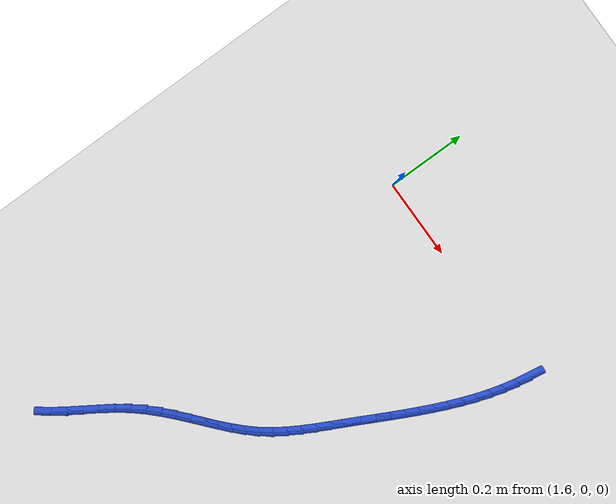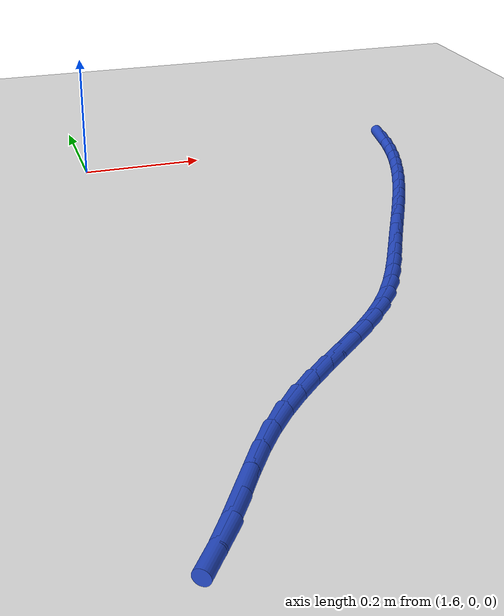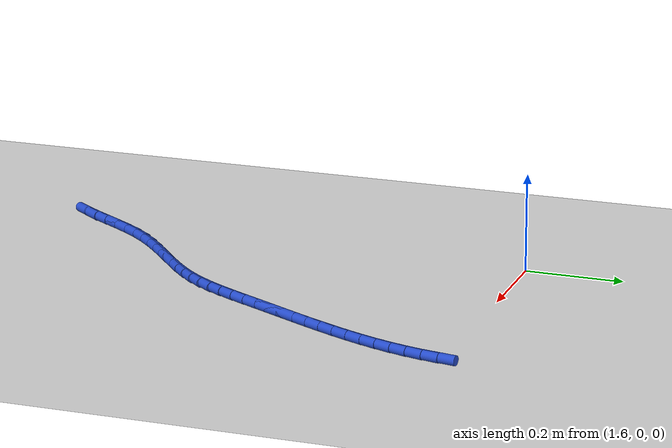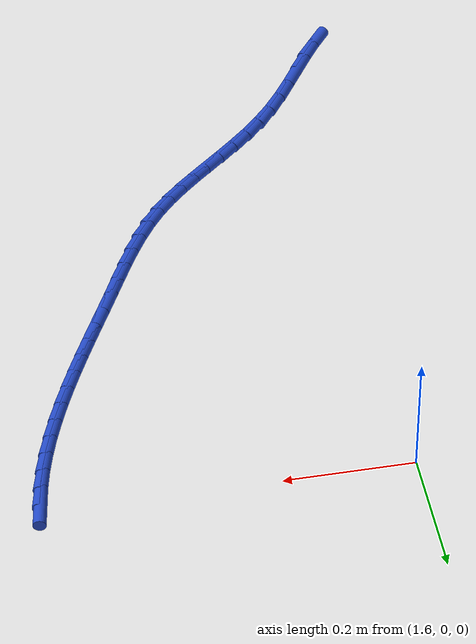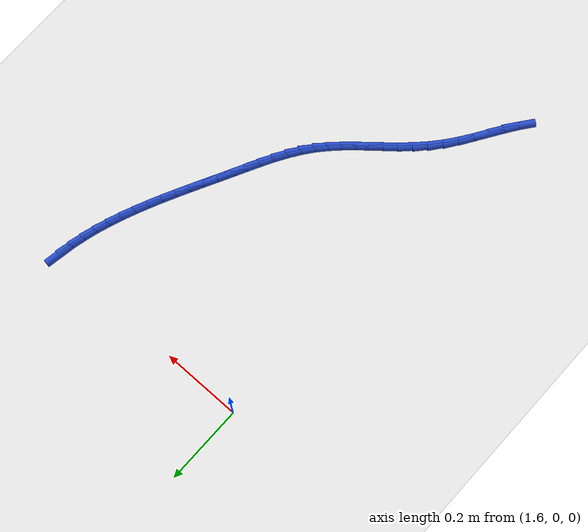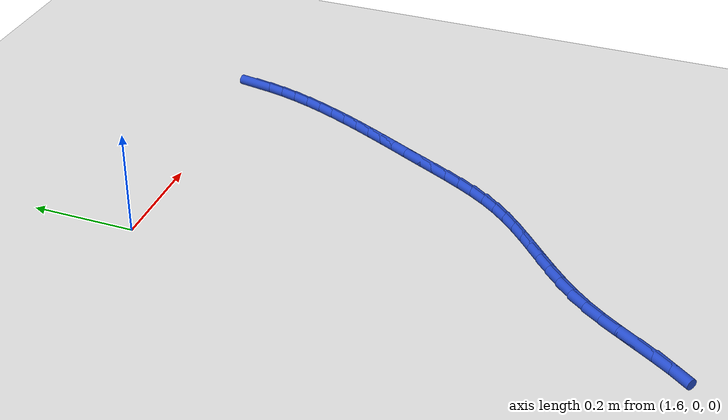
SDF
<sdf version="1.6">
 <world name="default">
  <model name="ground_plane">
   <static>1</static>
   <link name="link">
    <collision name="collision">
     <geometry><plane><normal>0 0 1</normal><size>100 100</size></plane></geometry>
     <surface><friction><ode><mu>100</mu><mu2>50</mu2></ode></friction></surface>
    </collision>
    <visual name="visual">
     <cast_shadows>0</cast_shadows>
     <geometry><plane><normal>0 0 1</normal><size>100 100</size></plane></geometry>
     <material>
      <script><uri>file://media/materials/scripts/gazebo.material</uri><name>Gazebo/WhiteGlow</name></script>
     </material>
    </visual>
   </link>
  </model>
  <model name="line">
   <link name="link_102">
    <pose>2.155064588680675 -0.008792439000582252 0.01 0 1.57 1.4000253454323495</pose>
    <collision name="collision">
     <geometry><cylinder><radius>0.01</radius><length>0.08</length></cylinder></geometry>
    </collision>
    <visual name="visual">
     <material>
      <script><name>Gazebo/Blue</name><uri>file://media/materials/scripts/gazebo.material</uri></script>
     </material>
     <geometry><cylinder><radius>0.01</radius><length>0.08</length></cylinder></geometry>
    </visual>
   </link>
   <link name="link_103">
    <pose>2.149396776092946 -0.04165873065581562 0.01 0 1.57 1.3446175372829663</pose>
    <collision name="collision">
     <geometry><cylinder><radius>0.01</radius><length>0.08</length></cylinder></geometry>
    </collision>
    <visual name="visual">
     <material>
      <script><name>Gazebo/Blue</name><uri>file://media/materials/scripts/gazebo.material</uri></script>
     </material>
     <geometry><cylinder><radius>0.01</radius><length>0.08</length></cylinder></geometry>
    </visual>
   </link>
   <link name="link_104">
    <pose>2.1418741980174034 -0.07434906977118327 0.01 0 1.57 1.2951506862296407</pose>
    <collision name="collision">
     <geometry><cylinder><radius>0.01</radius><length>0.08</length></cylinder></geometry>
    </collision>
    <visual name="visual">
     <material>
      <script><name>Gazebo/Blue</name><uri>file://media/materials/scripts/gazebo.material</uri></script>
     </material>
     <geometry><cylinder><radius>0.01</radius><length>0.08</length></cylinder></geometry>
    </visual>
   </link>
   <link name="link_105">
    <pose>2.1326749928296573 -0.10687281875857958 0.01 0 1.57 1.2515823759961422</pose>
    <collision name="collision">
     <geometry><cylinder><radius>0.01</radius><length>0.08</length></cylinder></geometry>
    </collision>
    <visual name="visual">
     <material>
      <script><name>Gazebo/Blue</name><uri>file://media/materials/scripts/gazebo.material</uri></script>
     </material>
     <geometry><cylinder><radius>0.01</radius><length>0.08</length></cylinder></geometry>
    </visual>
   </link>
   <link name="link_106">
    <pose>2.1219772989053145 -0.13923934002989893 0.01 0 1.57 1.213767001707686</pose>
    <collision name="collision">
     <geometry><cylinder><radius>0.01</radius><length>0.08</length></cylinder></geometry>
    </collision>
    <visual name="visual">
     <material>
      <script><name>Gazebo/Blue</name><uri>file://media/materials/scripts/gazebo.material</uri></script>
     </material>
     <geometry><cylinder><radius>0.01</radius><length>0.08</length></cylinder></geometry>
    </visual>
   </link>
   <link name="link_107">
    <pose>2.1099592546199846 -0.17145799599703554 0.01 0 1.57 1.1815018084648008</pose>
    <collision name="collision">
     <geometry><cylinder><radius>0.01</radius><length>0.08</length></cylinder></geometry>
    </collision>
    <visual name="visual">
     <material>
      <script><name>Gazebo/Blue</name><uri>file://media/materials/scripts/gazebo.material</uri></script>
     </material>
     <geometry><cylinder><radius>0.01</radius><length>0.08</length></cylinder></geometry>
    </visual>
   </link>
   <link name="link_108">
    <pose>2.096798998349276 -0.20353814907188372 0.01 0 1.57 1.154563183784626</pose>
    <collision name="collision">
     <geometry><cylinder><radius>0.01</radius><length>0.08</length></cylinder></geometry>
    </collision>
    <visual name="visual">
     <material>
      <script><name>Gazebo/Blue</name><uri>file://media/materials/scripts/gazebo.material</uri></script>
     </material>
     <geometry><cylinder><radius>0.01</radius><length>0.08</length></cylinder></geometry>
    </visual>
   </link>
   <link name="link_109">
    <pose>2.082674668468797 -0.23548916166633785 0.01 0 1.57 1.132733490631321</pose>
    <collision name="collision">
     <geometry><cylinder><radius>0.01</radius><length>0.08</length></cylinder></geometry>
    </collision>
    <visual name="visual">
     <material>
      <script><name>Gazebo/Blue</name><uri>file://media/materials/scripts/gazebo.material</uri></script>
     </material>
     <geometry><cylinder><radius>0.01</radius><length>0.08</length></cylinder></geometry>
    </visual>
   </link>
   <link name="link_110">
    <pose>2.0677644033541567 -0.2673203961922922 0.01 0 1.57 1.1158199483659565</pose>
    <collision name="collision">
     <geometry><cylinder><radius>0.01</radius><length>0.08</length></cylinder></geometry>
    </collision>
    <visual name="visual">
     <material>
      <script><name>Gazebo/Blue</name><uri>file://media/materials/scripts/gazebo.material</uri></script>
     </material>
     <geometry><cylinder><radius>0.01</radius><length>0.08</length></cylinder></geometry>
    </visual>
   </link>
   <link name="link_111">
    <pose>2.0522463413809646 -0.2990412150616412 0.01 0 1.57 1.1036674229136112</pose>
    <collision name="collision">
     <geometry><cylinder><radius>0.01</radius><length>0.08</length></cylinder></geometry>
    </collision>
    <visual name="visual">
     <material>
      <script><name>Gazebo/Blue</name><uri>file://media/materials/scripts/gazebo.material</uri></script>
     </material>
     <geometry><cylinder><radius>0.01</radius><length>0.08</length></cylinder></geometry>
    </visual>
   </link>
   <link name="link_112">
    <pose>2.0362986209248275 -0.33066098068627897 0.01 0 1.57 1.0961668610074464</pose>
    <collision name="collision">
     <geometry><cylinder><radius>0.01</radius><length>0.08</length></cylinder></geometry>
    </collision>
    <visual name="visual">
     <material>
      <script><name>Gazebo/Blue</name><uri>file://media/materials/scripts/gazebo.material</uri></script>
     </material>
     <geometry><cylinder><radius>0.01</radius><length>0.08</length></cylinder></geometry>
    </visual>
   </link>
   <link name="link_113">
    <pose>2.0200993803613554 -0.36218905547810004 0.01 0 1.57 1.0932607645287367</pose>
    <collision name="collision">
     <geometry><cylinder><radius>0.01</radius><length>0.08</length></cylinder></geometry>
    </collision>
    <visual name="visual">
     <material>
      <script><name>Gazebo/Blue</name><uri>file://media/materials/scripts/gazebo.material</uri></script>
     </material>
     <geometry><cylinder><radius>0.01</radius><length>0.08</length></cylinder></geometry>
    </visual>
   </link>
   <link name="link_114">
    <pose>2.0038267580661566 -0.3936348018489986 0.01 0 1.57 1.0949466985244112</pose>
    <collision name="collision">
     <geometry><cylinder><radius>0.01</radius><length>0.08</length></cylinder></geometry>
    </collision>
    <visual name="visual">
     <material>
      <script><name>Gazebo/Blue</name><uri>file://media/materials/scripts/gazebo.material</uri></script>
     </material>
     <geometry><cylinder><radius>0.01</radius><length>0.08</length></cylinder></geometry>
    </visual>
   </link>
   <link name="link_115">
    <pose>1.9876588924148406 -0.4250075822108691 0.01 0 1.57 1.0987207291378511</pose>
    <collision name="collision">
     <geometry><cylinder><radius>0.01</radius><length>0.08</length></cylinder></geometry>
    </collision>
    <visual name="visual">
     <material>
      <script><name>Gazebo/Blue</name><uri>file://media/materials/scripts/gazebo.material</uri></script>
     </material>
     <geometry><cylinder><radius>0.01</radius><length>0.08</length></cylinder></geometry>
    </visual>
   </link>
   <link name="link_116">
    <pose>1.9716960927021117 -0.4562716453393689 0.01 0 1.57 1.0922682239615071</pose>
    <collision name="collision">
     <geometry><cylinder><radius>0.01</radius><length>0.08</length></cylinder></geometry>
    </collision>
    <visual name="visual">
     <material>
      <script><name>Gazebo/Blue</name><uri>file://media/materials/scripts/gazebo.material</uri></script>
     </material>
     <geometry><cylinder><radius>0.01</radius><length>0.08</length></cylinder></geometry>
    </visual>
   </link>
   <link name="link_117">
    <pose>1.9556653283291499 -0.48717483349535223 0.01 0 1.57 1.0715256078185538</pose>
    <collision name="collision">
     <geometry><cylinder><radius>0.01</radius><length>0.08</length></cylinder></geometry>
    </collision>
    <visual name="visual">
     <material>
      <script><name>Gazebo/Blue</name><uri>file://media/materials/scripts/gazebo.material</uri></script>
     </material>
     <geometry><cylinder><radius>0.01</radius><length>0.08</length></cylinder></geometry>
    </visual>
   </link>
   <link name="link_118">
    <pose>1.9391817575525923 -0.5174001775961021 0.01 0 1.57 1.0358551631294253</pose>
    <collision name="collision">
     <geometry><cylinder><radius>0.01</radius><length>0.08</length></cylinder></geometry>
    </collision>
    <visual name="visual">
     <material>
      <script><name>Gazebo/Blue</name><uri>file://media/materials/scripts/gazebo.material</uri></script>
     </material>
     <geometry><cylinder><radius>0.01</radius><length>0.08</length></cylinder></geometry>
    </visual>
   </link>
   <link name="link_119">
    <pose>1.9218605179197026 -0.5466306965547115 0.01 0 1.57 0.984499335268202</pose>
    <collision name="collision">
     <geometry><cylinder><radius>0.01</radius><length>0.08</length></cylinder></geometry>
    </collision>
    <visual name="visual">
     <material>
      <script><name>Gazebo/Blue</name><uri>file://media/materials/scripts/gazebo.material</uri></script>
     </material>
     <geometry><cylinder><radius>0.01</radius><length>0.08</length></cylinder></geometry>
    </visual>
   </link>
   <link name="link_120">
    <pose>1.9033167469777437 -0.5745494092842732 0.01 0 1.57 0.9168363722405305</pose>
    <collision name="collision">
     <geometry><cylinder><radius>0.01</radius><length>0.08</length></cylinder></geometry>
    </collision>
    <visual name="visual">
     <material>
      <script><name>Gazebo/Blue</name><uri>file://media/materials/scripts/gazebo.material</uri></script>
     </material>
     <geometry><cylinder><radius>0.01</radius><length>0.08</length></cylinder></geometry>
    </visual>
   </link>
   <link name="link_121">
    <pose>1.8831659573168744 -0.6008397318723139 0.01 0 1.57 0.8409815643941699</pose>
    <collision name="collision">
     <geometry><cylinder><radius>0.01</radius><length>0.08</length></cylinder></geometry>
    </collision>
    <visual name="visual">
     <material>
      <script><name>Gazebo/Blue</name><uri>file://media/materials/scripts/gazebo.material</uri></script>
     </material>
     <geometry><cylinder><radius>0.01</radius><length>0.08</length></cylinder></geometry>
    </visual>
   </link>
   <link name="link_122">
    <pose>1.8612102392743015 -0.6253826682335052 0.01 0 1.57 0.779457318307408</pose>
    <collision name="collision">
     <geometry><cylinder><radius>0.01</radius><length>0.08</length></cylinder></geometry>
    </collision>
    <visual name="visual">
     <material>
      <script><name>Gazebo/Blue</name><uri>file://media/materials/scripts/gazebo.material</uri></script>
     </material>
     <geometry><cylinder><radius>0.01</radius><length>0.08</length></cylinder></geometry>
    </visual>
   </link>
   <link name="link_123">
    <pose>1.8377396727562956 -0.6485760084488627 0.01 0 1.57 0.736619561211895</pose>
    <collision name="collision">
     <geometry><cylinder><radius>0.01</radius><length>0.08</length></cylinder></geometry>
    </collision>
    <visual name="visual">
     <material>
      <script><name>Gazebo/Blue</name><uri>file://media/materials/scripts/gazebo.material</uri></script>
     </material>
     <geometry><cylinder><radius>0.01</radius><length>0.08</length></cylinder></geometry>
    </visual>
   </link>
   <link name="link_124">
    <pose>1.813123133515688 -0.6709009882426068 0.01 0 1.57 0.712515186400077</pose>
    <collision name="collision">
     <geometry><cylinder><radius>0.01</radius><length>0.08</length></cylinder></geometry>
    </collision>
    <visual name="visual">
     <material>
      <script><name>Gazebo/Blue</name><uri>file://media/materials/scripts/gazebo.material</uri></script>
     </material>
     <geometry><cylinder><radius>0.01</radius><length>0.08</length></cylinder></geometry>
    </visual>
   </link>
   <link name="link_125">
    <pose>1.7877294973053104 -0.6928388433389576 0.01 0 1.57 0.7067484844030026</pose>
    <collision name="collision">
     <geometry><cylinder><radius>0.01</radius><length>0.08</length></cylinder></geometry>
    </collision>
    <visual name="visual">
     <material>
      <script><name>Gazebo/Blue</name><uri>file://media/materials/scripts/gazebo.material</uri></script>
     </material>
     <geometry><cylinder><radius>0.01</radius><length>0.08</length></cylinder></geometry>
    </visual>
   </link>
   <link name="link_126">
    <pose>1.761927639877993 -0.7148708094621354 0.01 0 1.57 0.7187480302549677</pose>
    <collision name="collision">
     <geometry><cylinder><radius>0.01</radius><length>0.08</length></cylinder></geometry>
    </collision>
    <visual name="visual">
     <material>
      <script><name>Gazebo/Blue</name><uri>file://media/materials/scripts/gazebo.material</uri></script>
     </material>
     <geometry><cylinder><radius>0.01</radius><length>0.08</length></cylinder></geometry>
    </visual>
   </link>
   <link name="link_127">
    <pose>1.7360864369865687 -0.7374781223363603 0.01 0 1.57 0.747840724867512</pose>
    <collision name="collision">
     <geometry><cylinder><radius>0.01</radius><length>0.08</length></cylinder></geometry>
    </collision>
    <visual name="visual">
     <material>
      <script><name>Gazebo/Blue</name><uri>file://media/materials/scripts/gazebo.material</uri></script>
     </material>
     <geometry><cylinder><radius>0.01</radius><length>0.08</length></cylinder></geometry>
    </visual>
   </link>
   <link name="link_128">
    <pose>1.710574764383867 -0.7611420176858524 0.01 0 1.57 0.793164620104043</pose>
    <collision name="collision">
     <geometry><cylinder><radius>0.01</radius><length>0.08</length></cylinder></geometry>
    </collision>
    <visual name="visual">
     <material>
      <script><name>Gazebo/Blue</name><uri>file://media/materials/scripts/gazebo.material</uri></script>
     </material>
     <geometry><cylinder><radius>0.01</radius><length>0.08</length></cylinder></geometry>
    </visual>
   </link>
   <link name="link_129">
    <pose>1.6857614978227207 -0.7863437312348323 0.01 0 1.57 0.853470263987651</pose>
    <collision name="collision">
     <geometry><cylinder><radius>0.01</radius><length>0.08</length></cylinder></geometry>
    </collision>
    <visual name="visual">
     <material>
      <script><name>Gazebo/Blue</name><uri>file://media/materials/scripts/gazebo.material</uri></script>
     </material>
     <geometry><cylinder><radius>0.01</radius><length>0.08</length></cylinder></geometry>
    </visual>
   </link>
   <link name="link_130">
    <pose>1.6620155130559604 -0.8135644987075198 0.01 0 1.57 0.922803636661939</pose>
    <collision name="collision">
     <geometry><cylinder><radius>0.01</radius><length>0.08</length></cylinder></geometry>
    </collision>
    <visual name="visual">
     <material>
      <script><name>Gazebo/Blue</name><uri>file://media/materials/scripts/gazebo.material</uri></script>
     </material>
     <geometry><cylinder><radius>0.01</radius><length>0.08</length></cylinder></geometry>
    </visual>
   </link>
   <link name="link_131">
    <pose>1.639627152051877 -0.8431379767914363 0.01 0 1.57 0.9739499777319437</pose>
    <collision name="collision">
     <geometry><cylinder><radius>0.01</radius><length>0.08</length></cylinder></geometry>
    </collision>
    <visual name="visual">
     <material>
      <script><name>Gazebo/Blue</name><uri>file://media/materials/scripts/gazebo.material</uri></script>
     </material>
     <geometry><cylinder><radius>0.01</radius><length>0.08</length></cylinder></geometry>
    </visual>
   </link>
   <link name="link_132">
    <pose>1.6183681997762815 -0.8744233607579347 0.01 0 1.57 0.9989854710238566</pose>
    <collision name="collision">
     <geometry><cylinder><radius>0.01</radius><length>0.08</length></cylinder></geometry>
    </collision>
    <visual name="visual">
     <material>
      <script><name>Gazebo/Blue</name><uri>file://media/materials/scripts/gazebo.material</uri></script>
     </material>
     <geometry><cylinder><radius>0.01</radius><length>0.08</length></cylinder></geometry>
    </visual>
   </link>
   <link name="link_133">
    <pose>1.5978001972206033 -0.9063847598221915 0.01 0 1.57 0.9994236829243984</pose>
    <collision name="collision">
     <geometry><cylinder><radius>0.01</radius><length>0.08</length></cylinder></geometry>
    </collision>
    <visual name="visual">
     <material>
      <script><name>Gazebo/Blue</name><uri>file://media/materials/scripts/gazebo.material</uri></script>
     </material>
     <geometry><cylinder><radius>0.01</radius><length>0.08</length></cylinder></geometry>
    </visual>
   </link>
   <link name="link_134">
    <pose>1.5774840859151695 -0.9379851567046786 0.01 0 1.57 0.9743975239623456</pose>
    <collision name="collision">
     <geometry><cylinder><radius>0.01</radius><length>0.08</length></cylinder></geometry>
    </collision>
    <visual name="visual">
     <material>
      <script><name>Gazebo/Blue</name><uri>file://media/materials/scripts/gazebo.material</uri></script>
     </material>
     <geometry><cylinder><radius>0.01</radius><length>0.08</length></cylinder></geometry>
    </visual>
   </link>
   <link name="link_135">
    <pose>1.5569808073903064 -0.9681875341258673 0.01 0 1.57 0.9203251966099443</pose>
    <collision name="collision">
     <geometry><cylinder><radius>0.01</radius><length>0.08</length></cylinder></geometry>
    </collision>
    <visual name="visual">
     <material>
      <script><name>Gazebo/Blue</name><uri>file://media/materials/scripts/gazebo.material</uri></script>
     </material>
     <geometry><cylinder><radius>0.01</radius><length>0.08</length></cylinder></geometry>
    </visual>
   </link>
  </model>
 </world>
</sdf>
